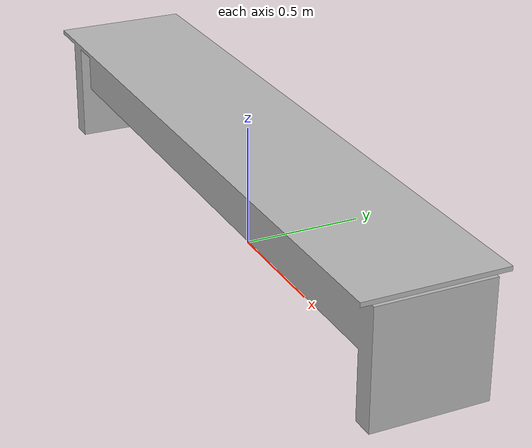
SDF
<?xml version="1.0"?>
<sdf version="1.4">
  <model name="desk_3">
    <static>true</static>
    <link name="link">
      <pose>0 0 0 0 0 0</pose>
      <collision name="collision">
        <geometry>
          <mesh>
             <uri>model://desk_3/desk_3_collision.dae</uri>
	     <scale>3.5 0.7 0.7</scale>
          </mesh>
        </geometry>
      </collision>
      <visual name="visual">
         <geometry>
          <mesh>
            <uri>model://desk_3/desk_3_visual.dae</uri>
		<scale>3.5 0.7 0.7</scale>
          </mesh>
        </geometry>
      </visual>
    </link>
  </model>
</sdf>
